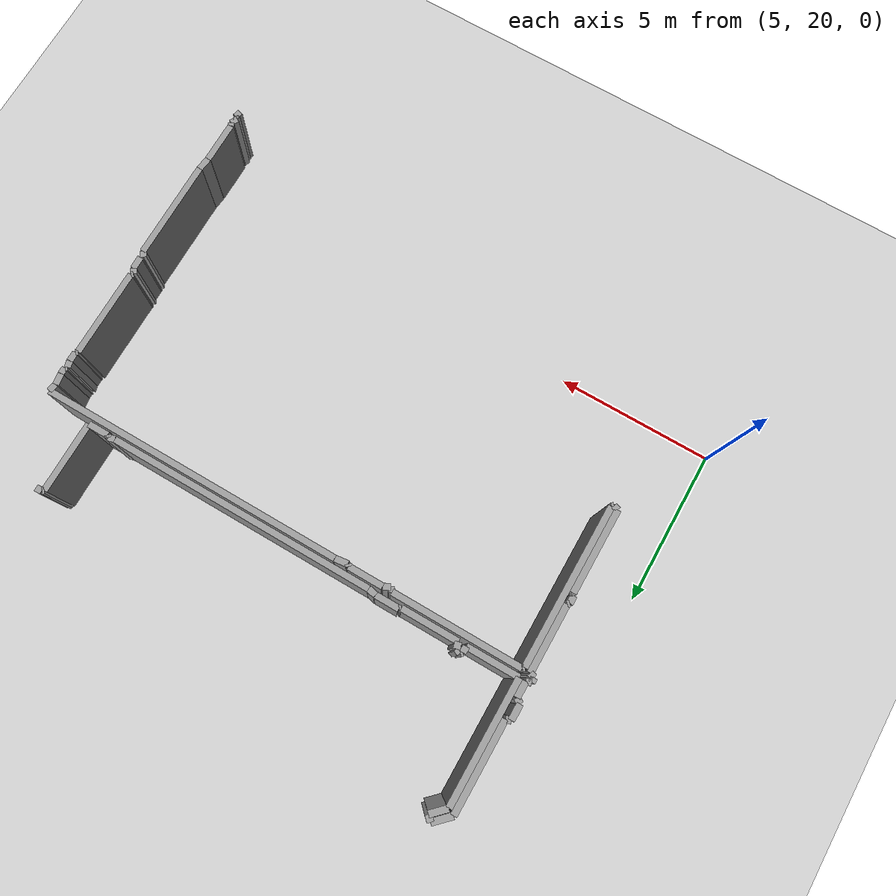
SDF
<sdf version="1.4">
 <world name="1_wall">
  <model name="ground_plane">
   <static>1</static>
   <link name="link">
    <collision name="collision">
     <geometry><plane><normal>0 0 1</normal><size>1000 1000</size></plane></geometry>
     <surface><friction><ode><mu>100</mu><mu2>50</mu2></ode></friction></surface>
    </collision>
    <visual name="visual">
     <cast_shadows>0</cast_shadows>
     <geometry><plane><normal>0 0 1</normal><size>10000 10000</size></plane></geometry>
     <material>
      <script><uri>file://media/materials/scripts/gazebo.material</uri><name>Gazebo/Grey</name></script>
     </material>
    </visual>
    <velocity_decay><linear>0</linear><angular>0</angular></velocity_decay>
   </link>
  </model>
  <model name="Wall_322">
   <static>1</static>
   <link name="Wall_322">
    <collision name="Wall_Collision_322">
     <geometry><box><size>0.2 0.2 2.5</size></box></geometry>
     <pose>0 0 1.25 0 -0 0</pose>
    </collision>
    <visual name="Wall_Visual_322">
     <pose>0 0 1.25 0 -0 0</pose>
     <geometry><box><size>0.2 0.2 2.5</size></box></geometry>
     <material>
      <script><uri>file://media/materials/scripts/gazebo.material</uri><name>Gazebo/Grey</name></script>
     </material>
    </visual>
    <velocity_decay><linear>0</linear><angular>0</angular></velocity_decay>
    <pose>21.4 31.2 0 0 0 3.14159265359</pose>
   </link>
  </model>
  <model name="Wall_323">
   <static>1</static>
   <link name="Wall_323">
    <collision name="Wall_Collision_323">
     <geometry><box><size>0.0707106781187 0.2 2.5</size></box></geometry>
     <pose>0 0 1.25 0 -0 0</pose>
    </collision>
    <visual name="Wall_Visual_323">
     <pose>0 0 1.25 0 -0 0</pose>
     <geometry><box><size>0.0707106781187 0.2 2.5</size></box></geometry>
     <material>
      <script><uri>file://media/materials/scripts/gazebo.material</uri><name>Gazebo/Grey</name></script>
     </material>
    </visual>
    <velocity_decay><linear>0</linear><angular>0</angular></velocity_decay>
    <pose>21.275 31.175 0 0 0 -2.35619449019</pose>
   </link>
  </model>
  <model name="Wall_324">
   <static>1</static>
   <link name="Wall_324">
    <collision name="Wall_Collision_324">
     <geometry><box><size>2.25 0.2 2.5</size></box></geometry>
     <pose>0 0 1.25 0 -0 0</pose>
    </collision>
    <visual name="Wall_Visual_324">
     <pose>0 0 1.25 0 -0 0</pose>
     <geometry><box><size>2.25 0.2 2.5</size></box></geometry>
     <material>
      <script><uri>file://media/materials/scripts/gazebo.material</uri><name>Gazebo/Grey</name></script>
     </material>
    </visual>
    <velocity_decay><linear>0</linear><angular>0</angular></velocity_decay>
    <pose>21.25 30.025 0 0 0 -1.57079632679</pose>
   </link>
  </model>
  <model name="Wall_325">
   <static>1</static>
   <link name="Wall_325">
    <collision name="Wall_Collision_325">
     <geometry><box><size>0.65 0.2 2.5</size></box></geometry>
     <pose>0 0 1.25 0 -0 0</pose>
    </collision>
    <visual name="Wall_Visual_325">
     <pose>0 0 1.25 0 -0 0</pose>
     <geometry><box><size>0.65 0.2 2.5</size></box></geometry>
     <material>
      <script><uri>file://media/materials/scripts/gazebo.material</uri><name>Gazebo/Grey</name></script>
     </material>
    </visual>
    <velocity_decay><linear>0</linear><angular>0</angular></velocity_decay>
    <pose>20.925 28.9 0 0 0 3.14159265359</pose>
   </link>
  </model>
  <model name="Wall_326">
   <static>1</static>
   <link name="Wall_326">
    <collision name="Wall_Collision_326">
     <geometry><box><size>0.0707106781187 0.2 2.5</size></box></geometry>
     <pose>0 0 1.25 0 -0 0</pose>
    </collision>
    <visual name="Wall_Visual_326">
     <pose>0 0 1.25 0 -0 0</pose>
     <geometry><box><size>0.0707106781187 0.2 2.5</size></box></geometry>
     <material>
      <script><uri>file://media/materials/scripts/gazebo.material</uri><name>Gazebo/Grey</name></script>
     </material>
    </visual>
    <velocity_decay><linear>0</linear><angular>0</angular></velocity_decay>
    <pose>20.575 28.925 0 0 0 2.35619449019</pose>
   </link>
  </model>
  <model name="Wall_327">
   <static>1</static>
   <link name="Wall_327">
    <collision name="Wall_Collision_327">
     <geometry><box><size>0.206155281281 0.2 2.5</size></box></geometry>
     <pose>0 0 1.25 0 -0 0</pose>
    </collision>
    <visual name="Wall_Visual_327">
     <pose>0 0 1.25 0 -0 0</pose>
     <geometry><box><size>0.206155281281 0.2 2.5</size></box></geometry>
     <material>
      <script><uri>file://media/materials/scripts/gazebo.material</uri><name>Gazebo/Grey</name></script>
     </material>
    </visual>
    <velocity_decay><linear>0</linear><angular>0</angular></velocity_decay>
    <pose>20.45 28.925 0 0 0 -2.89661399046</pose>
   </link>
  </model>
  <model name="Wall_328">
   <static>1</static>
   <link name="Wall_328">
    <collision name="Wall_Collision_328">
     <geometry><box><size>8.45 0.2 2.5</size></box></geometry>
     <pose>0 0 1.25 0 -0 0</pose>
    </collision>
    <visual name="Wall_Visual_328">
     <pose>0 0 1.25 0 -0 0</pose>
     <geometry><box><size>8.45 0.2 2.5</size></box></geometry>
     <material>
      <script><uri>file://media/materials/scripts/gazebo.material</uri><name>Gazebo/Grey</name></script>
     </material>
    </visual>
    <velocity_decay><linear>0</linear><angular>0</angular></velocity_decay>
    <pose>16.125 28.9 0 0 0 3.14159265359</pose>
   </link>
  </model>
  <model name="Wall_329">
   <static>1</static>
   <link name="Wall_329">
    <collision name="Wall_Collision_329">
     <geometry><box><size>0.25495097568 0.2 2.5</size></box></geometry>
     <pose>0 0 1.25 0 -0 0</pose>
    </collision>
    <visual name="Wall_Visual_329">
     <pose>0 0 1.25 0 -0 0</pose>
     <geometry><box><size>0.25495097568 0.2 2.5</size></box></geometry>
     <material>
      <script><uri>file://media/materials/scripts/gazebo.material</uri><name>Gazebo/Grey</name></script>
     </material>
    </visual>
    <velocity_decay><linear>0</linear><angular>0</angular></velocity_decay>
    <pose>11.775 28.925 0 0 0 2.94419709374</pose>
   </link>
  </model>
  <model name="Wall_330">
   <static>1</static>
   <link name="Wall_330">
    <collision name="Wall_Collision_330">
     <geometry><box><size>0.75 0.2 2.5</size></box></geometry>
     <pose>0 0 1.25 0 -0 0</pose>
    </collision>
    <visual name="Wall_Visual_330">
     <pose>0 0 1.25 0 -0 0</pose>
     <geometry><box><size>0.75 0.2 2.5</size></box></geometry>
     <material>
      <script><uri>file://media/materials/scripts/gazebo.material</uri><name>Gazebo/Grey</name></script>
     </material>
    </visual>
    <velocity_decay><linear>0</linear><angular>0</angular></velocity_decay>
    <pose>11.275 28.95 0 0 0 3.14159265359</pose>
   </link>
  </model>
  <model name="Wall_331">
   <static>1</static>
   <link name="Wall_331">
    <collision name="Wall_Collision_331">
     <geometry><box><size>0.0707106781187 0.2 2.5</size></box></geometry>
     <pose>0 0 1.25 0 -0 0</pose>
    </collision>
    <visual name="Wall_Visual_331">
     <pose>0 0 1.25 0 -0 0</pose>
     <geometry><box><size>0.0707106781187 0.2 2.5</size></box></geometry>
     <material>
      <script><uri>file://media/materials/scripts/gazebo.material</uri><name>Gazebo/Grey</name></script>
     </material>
    </visual>
    <velocity_decay><linear>0</linear><angular>0</angular></velocity_decay>
    <pose>10.875 28.925 0 0 0 -2.35619449019</pose>
   </link>
  </model>
  <model name="Wall_332">
   <static>1</static>
   <link name="Wall_332">
    <collision name="Wall_Collision_332">
     <geometry><box><size>1.8 0.2 2.5</size></box></geometry>
     <pose>0 0 1.25 0 -0 0</pose>
    </collision>
    <visual name="Wall_Visual_332">
     <pose>0 0 1.25 0 -0 0</pose>
     <geometry><box><size>1.8 0.2 2.5</size></box></geometry>
     <material>
      <script><uri>file://media/materials/scripts/gazebo.material</uri><name>Gazebo/Grey</name></script>
     </material>
    </visual>
    <velocity_decay><linear>0</linear><angular>0</angular></velocity_decay>
    <pose>9.95 28.9 0 0 0 3.14159265359</pose>
   </link>
  </model>
  <model name="Wall_333">
   <static>1</static>
   <link name="Wall_333">
    <collision name="Wall_Collision_333">
     <geometry><box><size>0.206155281281 0.2 2.5</size></box></geometry>
     <pose>0 0 1.25 0 -0 0</pose>
    </collision>
    <visual name="Wall_Visual_333">
     <pose>0 0 1.25 0 -0 0</pose>
     <geometry><box><size>0.206155281281 0.2 2.5</size></box></geometry>
     <material>
      <script><uri>file://media/materials/scripts/gazebo.material</uri><name>Gazebo/Grey</name></script>
     </material>
    </visual>
    <velocity_decay><linear>0</linear><angular>0</angular></velocity_decay>
    <pose>9.025 29.0 0 0 0 1.81577498992</pose>
   </link>
  </model>
  <model name="Wall_334">
   <static>1</static>
   <link name="Wall_334">
    <collision name="Wall_Collision_334">
     <geometry><box><size>0.158113883008 0.2 2.5</size></box></geometry>
     <pose>0 0 1.25 0 -0 0</pose>
    </collision>
    <visual name="Wall_Visual_334">
     <pose>0 0 1.25 0 -0 0</pose>
     <geometry><box><size>0.158113883008 0.2 2.5</size></box></geometry>
     <material>
      <script><uri>file://media/materials/scripts/gazebo.material</uri><name>Gazebo/Grey</name></script>
     </material>
    </visual>
    <velocity_decay><linear>0</linear><angular>0</angular></velocity_decay>
    <pose>8.925 29.125 0 0 0 2.81984209919</pose>
   </link>
  </model>
  <model name="Wall_335">
   <static>1</static>
   <link name="Wall_335">
    <collision name="Wall_Collision_335">
     <geometry><box><size>0.0707106781187 0.2 2.5</size></box></geometry>
     <pose>0 0 1.25 0 -0 0</pose>
    </collision>
    <visual name="Wall_Visual_335">
     <pose>0 0 1.25 0 -0 0</pose>
     <geometry><box><size>0.0707106781187 0.2 2.5</size></box></geometry>
     <material>
      <script><uri>file://media/materials/scripts/gazebo.material</uri><name>Gazebo/Grey</name></script>
     </material>
    </visual>
    <velocity_decay><linear>0</linear><angular>0</angular></velocity_decay>
    <pose>8.825 29.125 0 0 0 -2.35619449019</pose>
   </link>
  </model>
  <model name="Wall_336">
   <static>1</static>
   <link name="Wall_336">
    <collision name="Wall_Collision_336">
     <geometry><box><size>0.2 0.2 2.5</size></box></geometry>
     <pose>0 0 1.25 0 -0 0</pose>
    </collision>
    <visual name="Wall_Visual_336">
     <pose>0 0 1.25 0 -0 0</pose>
     <geometry><box><size>0.2 0.2 2.5</size></box></geometry>
     <material>
      <script><uri>file://media/materials/scripts/gazebo.material</uri><name>Gazebo/Grey</name></script>
     </material>
    </visual>
    <velocity_decay><linear>0</linear><angular>0</angular></velocity_decay>
    <pose>8.8 29.0 0 0 0 -1.57079632679</pose>
   </link>
  </model>
  <model name="Wall_337">
   <static>1</static>
   <link name="Wall_337">
    <collision name="Wall_Collision_337">
     <geometry><box><size>1.65 0.2 2.5</size></box></geometry>
     <pose>0 0 1.25 0 -0 0</pose>
    </collision>
    <visual name="Wall_Visual_337">
     <pose>0 0 1.25 0 -0 0</pose>
     <geometry><box><size>1.65 0.2 2.5</size></box></geometry>
     <material>
      <script><uri>file://media/materials/scripts/gazebo.material</uri><name>Gazebo/Grey</name></script>
     </material>
    </visual>
    <velocity_decay><linear>0</linear><angular>0</angular></velocity_decay>
    <pose>7.975 28.9 0 0 0 3.14159265359</pose>
   </link>
  </model>
  <model name="Wall_338">
   <static>1</static>
   <link name="Wall_338">
    <collision name="Wall_Collision_338">
     <geometry><box><size>3.9 0.2 2.5</size></box></geometry>
     <pose>0 0 1.25 0 -0 0</pose>
    </collision>
    <visual name="Wall_Visual_338">
     <pose>0 0 1.25 0 -0 0</pose>
     <geometry><box><size>3.9 0.2 2.5</size></box></geometry>
     <material>
      <script><uri>file://media/materials/scripts/gazebo.material</uri><name>Gazebo/Grey</name></script>
     </material>
    </visual>
    <velocity_decay><linear>0</linear><angular>0</angular></velocity_decay>
    <pose>7.15 30.85 0 0 0 1.57079632679</pose>
   </link>
  </model>
  <model name="Wall_339">
   <static>1</static>
   <link name="Wall_339">
    <collision name="Wall_Collision_339">
     <geometry><box><size>0.565685424949 0.2 2.5</size></box></geometry>
     <pose>0 0 1.25 0 -0 0</pose>
    </collision>
    <visual name="Wall_Visual_339">
     <pose>0 0 1.25 0 -0 0</pose>
     <geometry><box><size>0.565685424949 0.2 2.5</size></box></geometry>
     <material>
      <script><uri>file://media/materials/scripts/gazebo.material</uri><name>Gazebo/Grey</name></script>
     </material>
    </visual>
    <velocity_decay><linear>0</linear><angular>0</angular></velocity_decay>
    <pose>7.35 33.0 0 0 0 0.785398163397</pose>
   </link>
  </model>
  <model name="Wall_340">
   <static>1</static>
   <link name="Wall_340">
    <collision name="Wall_Collision_340">
     <geometry><box><size>0.212132034356 0.2 2.5</size></box></geometry>
     <pose>0 0 1.25 0 -0 0</pose>
    </collision>
    <visual name="Wall_Visual_340">
     <pose>0 0 1.25 0 -0 0</pose>
     <geometry><box><size>0.212132034356 0.2 2.5</size></box></geometry>
     <material>
      <script><uri>file://media/materials/scripts/gazebo.material</uri><name>Gazebo/Grey</name></script>
     </material>
    </visual>
    <velocity_decay><linear>0</linear><angular>0</angular></velocity_decay>
    <pose>7.475 33.275 0 0 0 2.35619449019</pose>
   </link>
  </model>
  <model name="Wall_341">
   <static>1</static>
   <link name="Wall_341">
    <collision name="Wall_Collision_341">
     <geometry><box><size>0.636396103068 0.2 2.5</size></box></geometry>
     <pose>0 0 1.25 0 -0 0</pose>
    </collision>
    <visual name="Wall_Visual_341">
     <pose>0 0 1.25 0 -0 0</pose>
     <geometry><box><size>0.636396103068 0.2 2.5</size></box></geometry>
     <material>
      <script><uri>file://media/materials/scripts/gazebo.material</uri><name>Gazebo/Grey</name></script>
     </material>
    </visual>
    <velocity_decay><linear>0</linear><angular>0</angular></velocity_decay>
    <pose>7.175 33.125 0 0 0 -2.35619449019</pose>
   </link>
  </model>
  <model name="Wall_342">
   <static>1</static>
   <link name="Wall_342">
    <collision name="Wall_Collision_342">
     <geometry><box><size>2.85 0.2 2.5</size></box></geometry>
     <pose>0 0 1.25 0 -0 0</pose>
    </collision>
    <visual name="Wall_Visual_342">
     <pose>0 0 1.25 0 -0 0</pose>
     <geometry><box><size>2.85 0.2 2.5</size></box></geometry>
     <material>
      <script><uri>file://media/materials/scripts/gazebo.material</uri><name>Gazebo/Grey</name></script>
     </material>
    </visual>
    <velocity_decay><linear>0</linear><angular>0</angular></velocity_decay>
    <pose>6.95 31.475 0 0 0 -1.57079632679</pose>
   </link>
  </model>
  <model name="Wall_343">
   <static>1</static>
   <link name="Wall_343">
    <collision name="Wall_Collision_343">
     <geometry><box><size>0.158113883008 0.2 2.5</size></box></geometry>
     <pose>0 0 1.25 0 -0 0</pose>
    </collision>
    <visual name="Wall_Visual_343">
     <pose>0 0 1.25 0 -0 0</pose>
     <geometry><box><size>0.158113883008 0.2 2.5</size></box></geometry>
     <material>
      <script><uri>file://media/materials/scripts/gazebo.material</uri><name>Gazebo/Grey</name></script>
     </material>
    </visual>
    <velocity_decay><linear>0</linear><angular>0</angular></velocity_decay>
    <pose>6.875 30.025 0 0 0 -2.81984209919</pose>
   </link>
  </model>
  <model name="Wall_344">
   <static>1</static>
   <link name="Wall_344">
    <collision name="Wall_Collision_344">
     <geometry><box><size>0.5 0.2 2.5</size></box></geometry>
     <pose>0 0 1.25 0 -0 0</pose>
    </collision>
    <visual name="Wall_Visual_344">
     <pose>0 0 1.25 0 -0 0</pose>
     <geometry><box><size>0.5 0.2 2.5</size></box></geometry>
     <material>
      <script><uri>file://media/materials/scripts/gazebo.material</uri><name>Gazebo/Grey</name></script>
     </material>
    </visual>
    <velocity_decay><linear>0</linear><angular>0</angular></velocity_decay>
    <pose>6.8 29.75 0 0 0 -1.57079632679</pose>
   </link>
  </model>
  <model name="Wall_345">
   <static>1</static>
   <link name="Wall_345">
    <collision name="Wall_Collision_345">
     <geometry><box><size>0.180277563773 0.2 2.5</size></box></geometry>
     <pose>0 0 1.25 0 -0 0</pose>
    </collision>
    <visual name="Wall_Visual_345">
     <pose>0 0 1.25 0 -0 0</pose>
     <geometry><box><size>0.180277563773 0.2 2.5</size></box></geometry>
     <material>
      <script><uri>file://media/materials/scripts/gazebo.material</uri><name>Gazebo/Grey</name></script>
     </material>
    </visual>
    <velocity_decay><linear>0</linear><angular>0</angular></velocity_decay>
    <pose>6.875 29.45 0 0 0 -0.588002603548</pose>
   </link>
  </model>
  <model name="Wall_346">
   <static>1</static>
   <link name="Wall_346">
    <collision name="Wall_Collision_346">
     <geometry><box><size>0.5 0.2 2.5</size></box></geometry>
     <pose>0 0 1.25 0 -0 0</pose>
    </collision>
    <visual name="Wall_Visual_346">
     <pose>0 0 1.25 0 -0 0</pose>
     <geometry><box><size>0.5 0.2 2.5</size></box></geometry>
     <material>
      <script><uri>file://media/materials/scripts/gazebo.material</uri><name>Gazebo/Grey</name></script>
     </material>
    </visual>
    <velocity_decay><linear>0</linear><angular>0</angular></velocity_decay>
    <pose>6.95 29.15 0 0 0 -1.57079632679</pose>
   </link>
  </model>
  <model name="Wall_347">
   <static>1</static>
   <link name="Wall_347">
    <collision name="Wall_Collision_347">
     <geometry><box><size>0.158113883008 0.2 2.5</size></box></geometry>
     <pose>0 0 1.25 0 -0 0</pose>
    </collision>
    <visual name="Wall_Visual_347">
     <pose>0 0 1.25 0 -0 0</pose>
     <geometry><box><size>0.158113883008 0.2 2.5</size></box></geometry>
     <material>
      <script><uri>file://media/materials/scripts/gazebo.material</uri><name>Gazebo/Grey</name></script>
     </material>
    </visual>
    <velocity_decay><linear>0</linear><angular>0</angular></velocity_decay>
    <pose>6.875 28.875 0 0 0 -2.81984209919</pose>
   </link>
  </model>
  <model name="Wall_348">
   <static>1</static>
   <link name="Wall_348">
    <collision name="Wall_Collision_348">
     <geometry><box><size>0.15 0.2 2.5</size></box></geometry>
     <pose>0 0 1.25 0 -0 0</pose>
    </collision>
    <visual name="Wall_Visual_348">
     <pose>0 0 1.25 0 -0 0</pose>
     <geometry><box><size>0.15 0.2 2.5</size></box></geometry>
     <material>
      <script><uri>file://media/materials/scripts/gazebo.material</uri><name>Gazebo/Grey</name></script>
     </material>
    </visual>
    <velocity_decay><linear>0</linear><angular>0</angular></velocity_decay>
    <pose>6.8 28.775 0 0 0 -1.57079632679</pose>
   </link>
  </model>
  <model name="Wall_349">
   <static>1</static>
   <link name="Wall_349">
    <collision name="Wall_Collision_349">
     <geometry><box><size>0.158113883008 0.2 2.5</size></box></geometry>
     <pose>0 0 1.25 0 -0 0</pose>
    </collision>
    <visual name="Wall_Visual_349">
     <pose>0 0 1.25 0 -0 0</pose>
     <geometry><box><size>0.158113883008 0.2 2.5</size></box></geometry>
     <material>
      <script><uri>file://media/materials/scripts/gazebo.material</uri><name>Gazebo/Grey</name></script>
     </material>
    </visual>
    <velocity_decay><linear>0</linear><angular>0</angular></velocity_decay>
    <pose>6.875 28.675 0 0 0 -0.321750554397</pose>
   </link>
  </model>
  <model name="Wall_350">
   <static>1</static>
   <link name="Wall_350">
    <collision name="Wall_Collision_350">
     <geometry><box><size>2.15 0.2 2.5</size></box></geometry>
     <pose>0 0 1.25 0 -0 0</pose>
    </collision>
    <visual name="Wall_Visual_350">
     <pose>0 0 1.25 0 -0 0</pose>
     <geometry><box><size>2.15 0.2 2.5</size></box></geometry>
     <material>
      <script><uri>file://media/materials/scripts/gazebo.material</uri><name>Gazebo/Grey</name></script>
     </material>
    </visual>
    <velocity_decay><linear>0</linear><angular>0</angular></velocity_decay>
    <pose>6.95 27.575 0 0 0 -1.57079632679</pose>
   </link>
  </model>
  <model name="Wall_351">
   <static>1</static>
   <link name="Wall_351">
    <collision name="Wall_Collision_351">
     <geometry><box><size>0.0707106781187 0.2 2.5</size></box></geometry>
     <pose>0 0 1.25 0 -0 0</pose>
    </collision>
    <visual name="Wall_Visual_351">
     <pose>0 0 1.25 0 -0 0</pose>
     <geometry><box><size>0.0707106781187 0.2 2.5</size></box></geometry>
     <material>
      <script><uri>file://media/materials/scripts/gazebo.material</uri><name>Gazebo/Grey</name></script>
     </material>
    </visual>
    <velocity_decay><linear>0</linear><angular>0</angular></velocity_decay>
    <pose>6.925 26.475 0 0 0 -2.35619449019</pose>
   </link>
  </model>
  <model name="Wall_352">
   <static>1</static>
   <link name="Wall_352">
    <collision name="Wall_Collision_352">
     <geometry><box><size>0.25 0.2 2.5</size></box></geometry>
     <pose>0 0 1.25 0 -0 0</pose>
    </collision>
    <visual name="Wall_Visual_352">
     <pose>0 0 1.25 0 -0 0</pose>
     <geometry><box><size>0.25 0.2 2.5</size></box></geometry>
     <material>
      <script><uri>file://media/materials/scripts/gazebo.material</uri><name>Gazebo/Grey</name></script>
     </material>
    </visual>
    <velocity_decay><linear>0</linear><angular>0</angular></velocity_decay>
    <pose>6.9 26.325 0 0 0 -1.57079632679</pose>
   </link>
  </model>
  <model name="Wall_353">
   <static>1</static>
   <link name="Wall_353">
    <collision name="Wall_Collision_353">
     <geometry><box><size>0.0707106781187 0.2 2.5</size></box></geometry>
     <pose>0 0 1.25 0 -0 0</pose>
    </collision>
    <visual name="Wall_Visual_353">
     <pose>0 0 1.25 0 -0 0</pose>
     <geometry><box><size>0.0707106781187 0.2 2.5</size></box></geometry>
     <material>
      <script><uri>file://media/materials/scripts/gazebo.material</uri><name>Gazebo/Grey</name></script>
     </material>
    </visual>
    <velocity_decay><linear>0</linear><angular>0</angular></velocity_decay>
    <pose>6.925 26.175 0 0 0 -0.785398163397</pose>
   </link>
  </model>
  <model name="Wall_354">
   <static>1</static>
   <link name="Wall_354">
    <collision name="Wall_Collision_354">
     <geometry><box><size>2.7 0.2 2.5</size></box></geometry>
     <pose>0 0 1.25 0 -0 0</pose>
    </collision>
    <visual name="Wall_Visual_354">
     <pose>0 0 1.25 0 -0 0</pose>
     <geometry><box><size>2.7 0.2 2.5</size></box></geometry>
     <material>
      <script><uri>file://media/materials/scripts/gazebo.material</uri><name>Gazebo/Grey</name></script>
     </material>
    </visual>
    <velocity_decay><linear>0</linear><angular>0</angular></velocity_decay>
    <pose>6.95 24.8 0 0 0 -1.57079632679</pose>
   </link>
  </model>
  <model name="Wall_355">
   <static>1</static>
   <link name="Wall_355">
    <collision name="Wall_Collision_355">
     <geometry><box><size>0.158113883008 0.2 2.5</size></box></geometry>
     <pose>0 0 1.25 0 -0 0</pose>
    </collision>
    <visual name="Wall_Visual_355">
     <pose>0 0 1.25 0 -0 0</pose>
     <geometry><box><size>0.158113883008 0.2 2.5</size></box></geometry>
     <material>
      <script><uri>file://media/materials/scripts/gazebo.material</uri><name>Gazebo/Grey</name></script>
     </material>
    </visual>
    <velocity_decay><linear>0</linear><angular>0</angular></velocity_decay>
    <pose>7.025 23.425 0 0 0 -0.321750554397</pose>
   </link>
  </model>
  <model name="Wall_356">
   <static>1</static>
   <link name="Wall_356">
    <collision name="Wall_Collision_356">
     <geometry><box><size>0.0707106781187 0.2 2.5</size></box></geometry>
     <pose>0 0 1.25 0 -0 0</pose>
    </collision>
    <visual name="Wall_Visual_356">
     <pose>0 0 1.25 0 -0 0</pose>
     <geometry><box><size>0.0707106781187 0.2 2.5</size></box></geometry>
     <material>
      <script><uri>file://media/materials/scripts/gazebo.material</uri><name>Gazebo/Grey</name></script>
     </material>
    </visual>
    <velocity_decay><linear>0</linear><angular>0</angular></velocity_decay>
    <pose>7.125 23.425 0 0 0 0.785398163397</pose>
   </link>
  </model>
  <model name="Wall_357">
   <static>1</static>
   <link name="Wall_357">
    <collision name="Wall_Collision_357">
     <geometry><box><size>5.15 0.2 2.5</size></box></geometry>
     <pose>0 0 1.25 0 -0 0</pose>
    </collision>
    <visual name="Wall_Visual_357">
     <pose>0 0 1.25 0 -0 0</pose>
     <geometry><box><size>5.15 0.2 2.5</size></box></geometry>
     <material>
      <script><uri>file://media/materials/scripts/gazebo.material</uri><name>Gazebo/Grey</name></script>
     </material>
    </visual>
    <velocity_decay><linear>0</linear><angular>0</angular></velocity_decay>
    <pose>7.15 26.025 0 0 0 1.57079632679</pose>
   </link>
  </model>
  <model name="Wall_358">
   <static>1</static>
   <link name="Wall_358">
    <collision name="Wall_Collision_358">
     <geometry><box><size>0.0707106781187 0.2 2.5</size></box></geometry>
     <pose>0 0 1.25 0 -0 0</pose>
    </collision>
    <visual name="Wall_Visual_358">
     <pose>0 0 1.25 0 -0 0</pose>
     <geometry><box><size>0.0707106781187 0.2 2.5</size></box></geometry>
     <material>
      <script><uri>file://media/materials/scripts/gazebo.material</uri><name>Gazebo/Grey</name></script>
     </material>
    </visual>
    <velocity_decay><linear>0</linear><angular>0</angular></velocity_decay>
    <pose>7.175 28.625 0 0 0 0.785398163397</pose>
   </link>
  </model>
  <model name="Wall_359">
   <static>1</static>
   <link name="Wall_359">
    <collision name="Wall_Collision_359">
     <geometry><box><size>4.1 0.2 2.5</size></box></geometry>
     <pose>0 0 1.25 0 -0 0</pose>
    </collision>
    <visual name="Wall_Visual_359">
     <pose>0 0 1.25 0 -0 0</pose>
     <geometry><box><size>4.1 0.2 2.5</size></box></geometry>
     <material>
      <script><uri>file://media/materials/scripts/gazebo.material</uri><name>Gazebo/Grey</name></script>
     </material>
    </visual>
    <velocity_decay><linear>0</linear><angular>0</angular></velocity_decay>
    <pose>9.25 28.65 0 0 0 0.0</pose>
   </link>
  </model>
  <model name="Wall_360">
   <static>1</static>
   <link name="Wall_360">
    <collision name="Wall_Collision_360">
     <geometry><box><size>0.141421356237 0.2 2.5</size></box></geometry>
     <pose>0 0 1.25 0 -0 0</pose>
    </collision>
    <visual name="Wall_Visual_360">
     <pose>0 0 1.25 0 -0 0</pose>
     <geometry><box><size>0.141421356237 0.2 2.5</size></box></geometry>
     <material>
      <script><uri>file://media/materials/scripts/gazebo.material</uri><name>Gazebo/Grey</name></script>
     </material>
    </visual>
    <velocity_decay><linear>0</linear><angular>0</angular></velocity_decay>
    <pose>11.35 28.6 0 0 0 -0.785398163397</pose>
   </link>
  </model>
  <model name="Wall_361">
   <static>1</static>
   <link name="Wall_361">
    <collision name="Wall_Collision_361">
     <geometry><box><size>0.22360679775 0.2 2.5</size></box></geometry>
     <pose>0 0 1.25 0 -0 0</pose>
    </collision>
    <visual name="Wall_Visual_361">
     <pose>0 0 1.25 0 -0 0</pose>
     <geometry><box><size>0.22360679775 0.2 2.5</size></box></geometry>
     <material>
      <script><uri>file://media/materials/scripts/gazebo.material</uri><name>Gazebo/Grey</name></script>
     </material>
    </visual>
    <velocity_decay><linear>0</linear><angular>0</angular></velocity_decay>
    <pose>11.5 28.6 0 0 0 0.463647609001</pose>
   </link>
  </model>
  <model name="Wall_362">
   <static>1</static>
   <link name="Wall_362">
    <collision name="Wall_Collision_362">
     <geometry><box><size>1.1 0.2 2.5</size></box></geometry>
     <pose>0 0 1.25 0 -0 0</pose>
    </collision>
    <visual name="Wall_Visual_362">
     <pose>0 0 1.25 0 -0 0</pose>
     <geometry><box><size>1.1 0.2 2.5</size></box></geometry>
     <material>
      <script><uri>file://media/materials/scripts/gazebo.material</uri><name>Gazebo/Grey</name></script>
     </material>
    </visual>
    <velocity_decay><linear>0</linear><angular>0</angular></velocity_decay>
    <pose>12.15 28.65 0 0 0 0.0</pose>
   </link>
  </model>
  <model name="Wall_363">
   <static>1</static>
   <link name="Wall_363">
    <collision name="Wall_Collision_363">
     <geometry><box><size>0.0707106781187 0.2 2.5</size></box></geometry>
     <pose>0 0 1.25 0 -0 0</pose>
    </collision>
    <visual name="Wall_Visual_363">
     <pose>0 0 1.25 0 -0 0</pose>
     <geometry><box><size>0.0707106781187 0.2 2.5</size></box></geometry>
     <material>
      <script><uri>file://media/materials/scripts/gazebo.material</uri><name>Gazebo/Grey</name></script>
     </material>
    </visual>
    <velocity_decay><linear>0</linear><angular>0</angular></velocity_decay>
    <pose>12.725 28.625 0 0 0 -0.785398163397</pose>
   </link>
  </model>
  <model name="Wall_364">
   <static>1</static>
   <link name="Wall_364">
    <collision name="Wall_Collision_364">
     <geometry><box><size>0.403112887415 0.2 2.5</size></box></geometry>
     <pose>0 0 1.25 0 -0 0</pose>
    </collision>
    <visual name="Wall_Visual_364">
     <pose>0 0 1.25 0 -0 0</pose>
     <geometry><box><size>0.403112887415 0.2 2.5</size></box></geometry>
     <material>
      <script><uri>file://media/materials/scripts/gazebo.material</uri><name>Gazebo/Grey</name></script>
     </material>
    </visual>
    <velocity_decay><linear>0</linear><angular>0</angular></velocity_decay>
    <pose>12.95 28.625 0 0 0 0.124354994547</pose>
   </link>
  </model>
  <model name="Wall_365">
   <static>1</static>
   <link name="Wall_365">
    <collision name="Wall_Collision_365">
     <geometry><box><size>9.65 0.2 2.5</size></box></geometry>
     <pose>0 0 1.25 0 -0 0</pose>
    </collision>
    <visual name="Wall_Visual_365">
     <pose>0 0 1.25 0 -0 0</pose>
     <geometry><box><size>9.65 0.2 2.5</size></box></geometry>
     <material>
      <script><uri>file://media/materials/scripts/gazebo.material</uri><name>Gazebo/Grey</name></script>
     </material>
    </visual>
    <velocity_decay><linear>0</linear><angular>0</angular></velocity_decay>
    <pose>17.975 28.65 0 0 0 0.0</pose>
   </link>
  </model>
  <model name="Wall_366">
   <static>1</static>
   <link name="Wall_366">
    <collision name="Wall_Collision_366">
     <geometry><box><size>0.25495097568 0.2 2.5</size></box></geometry>
     <pose>0 0 1.25 0 -0 0</pose>
    </collision>
    <visual name="Wall_Visual_366">
     <pose>0 0 1.25 0 -0 0</pose>
     <geometry><box><size>0.25495097568 0.2 2.5</size></box></geometry>
     <material>
      <script><uri>file://media/materials/scripts/gazebo.material</uri><name>Gazebo/Grey</name></script>
     </material>
    </visual>
    <velocity_decay><linear>0</linear><angular>0</angular></velocity_decay>
    <pose>22.775 28.525 0 0 0 -1.76819188664</pose>
   </link>
  </model>
  <model name="Wall_367">
   <static>1</static>
   <link name="Wall_367">
    <collision name="Wall_Collision_367">
     <geometry><box><size>0.353553390593 0.2 2.5</size></box></geometry>
     <pose>0 0 1.25 0 -0 0</pose>
    </collision>
    <visual name="Wall_Visual_367">
     <pose>0 0 1.25 0 -0 0</pose>
     <geometry><box><size>0.353553390593 0.2 2.5</size></box></geometry>
     <material>
      <script><uri>file://media/materials/scripts/gazebo.material</uri><name>Gazebo/Grey</name></script>
     </material>
    </visual>
    <velocity_decay><linear>0</linear><angular>0</angular></velocity_decay>
    <pose>22.775 28.225 0 0 0 -1.42889927219</pose>
   </link>
  </model>
  <model name="Wall_368">
   <static>1</static>
   <link name="Wall_368">
    <collision name="Wall_Collision_368">
     <geometry><box><size>0.2 0.2 2.5</size></box></geometry>
     <pose>0 0 1.25 0 -0 0</pose>
    </collision>
    <visual name="Wall_Visual_368">
     <pose>0 0 1.25 0 -0 0</pose>
     <geometry><box><size>0.2 0.2 2.5</size></box></geometry>
     <material>
      <script><uri>file://media/materials/scripts/gazebo.material</uri><name>Gazebo/Grey</name></script>
     </material>
    </visual>
    <velocity_decay><linear>0</linear><angular>0</angular></velocity_decay>
    <pose>22.8 27.95 0 0 0 -1.57079632679</pose>
   </link>
  </model>
  <model name="Wall_369">
   <static>1</static>
   <link name="Wall_369">
    <collision name="Wall_Collision_369">
     <geometry><box><size>0.0707106781187 0.2 2.5</size></box></geometry>
     <pose>0 0 1.25 0 -0 0</pose>
    </collision>
    <visual name="Wall_Visual_369">
     <pose>0 0 1.25 0 -0 0</pose>
     <geometry><box><size>0.0707106781187 0.2 2.5</size></box></geometry>
     <material>
      <script><uri>file://media/materials/scripts/gazebo.material</uri><name>Gazebo/Grey</name></script>
     </material>
    </visual>
    <velocity_decay><linear>0</linear><angular>0</angular></velocity_decay>
    <pose>22.775 27.825 0 0 0 -2.35619449019</pose>
   </link>
  </model>
  <model name="Wall_370">
   <static>1</static>
   <link name="Wall_370">
    <collision name="Wall_Collision_370">
     <geometry><box><size>0.206155281281 0.2 2.5</size></box></geometry>
     <pose>0 0 1.25 0 -0 0</pose>
    </collision>
    <visual name="Wall_Visual_370">
     <pose>0 0 1.25 0 -0 0</pose>
     <geometry><box><size>0.206155281281 0.2 2.5</size></box></geometry>
     <material>
      <script><uri>file://media/materials/scripts/gazebo.material</uri><name>Gazebo/Grey</name></script>
     </material>
    </visual>
    <velocity_decay><linear>0</linear><angular>0</angular></velocity_decay>
    <pose>22.775 27.7 0 0 0 -1.32581766367</pose>
   </link>
  </model>
  <model name="Wall_371">
   <static>1</static>
   <link name="Wall_371">
    <collision name="Wall_Collision_371">
     <geometry><box><size>0.3 0.2 2.5</size></box></geometry>
     <pose>0 0 1.25 0 -0 0</pose>
    </collision>
    <visual name="Wall_Visual_371">
     <pose>0 0 1.25 0 -0 0</pose>
     <geometry><box><size>0.3 0.2 2.5</size></box></geometry>
     <material>
      <script><uri>file://media/materials/scripts/gazebo.material</uri><name>Gazebo/Grey</name></script>
     </material>
    </visual>
    <velocity_decay><linear>0</linear><angular>0</angular></velocity_decay>
    <pose>22.8 27.45 0 0 0 -1.57079632679</pose>
   </link>
  </model>
  <model name="Wall_372">
   <static>1</static>
   <link name="Wall_372">
    <collision name="Wall_Collision_372">
     <geometry><box><size>0.0707106781187 0.2 2.5</size></box></geometry>
     <pose>0 0 1.25 0 -0 0</pose>
    </collision>
    <visual name="Wall_Visual_372">
     <pose>0 0 1.25 0 -0 0</pose>
     <geometry><box><size>0.0707106781187 0.2 2.5</size></box></geometry>
     <material>
      <script><uri>file://media/materials/scripts/gazebo.material</uri><name>Gazebo/Grey</name></script>
     </material>
    </visual>
    <velocity_decay><linear>0</linear><angular>0</angular></velocity_decay>
    <pose>22.775 27.275 0 0 0 -2.35619449019</pose>
   </link>
  </model>
  <model name="Wall_373">
   <static>1</static>
   <link name="Wall_373">
    <collision name="Wall_Collision_373">
     <geometry><box><size>2.8 0.2 2.5</size></box></geometry>
     <pose>0 0 1.25 0 -0 0</pose>
    </collision>
    <visual name="Wall_Visual_373">
     <pose>0 0 1.25 0 -0 0</pose>
     <geometry><box><size>2.8 0.2 2.5</size></box></geometry>
     <material>
      <script><uri>file://media/materials/scripts/gazebo.material</uri><name>Gazebo/Grey</name></script>
     </material>
    </visual>
    <velocity_decay><linear>0</linear><angular>0</angular></velocity_decay>
    <pose>22.75 25.85 0 0 0 -1.57079632679</pose>
   </link>
  </model>
  <model name="Wall_374">
   <static>1</static>
   <link name="Wall_374">
    <collision name="Wall_Collision_374">
     <geometry><box><size>0.0707106781187 0.2 2.5</size></box></geometry>
     <pose>0 0 1.25 0 -0 0</pose>
    </collision>
    <visual name="Wall_Visual_374">
     <pose>0 0 1.25 0 -0 0</pose>
     <geometry><box><size>0.0707106781187 0.2 2.5</size></box></geometry>
     <material>
      <script><uri>file://media/materials/scripts/gazebo.material</uri><name>Gazebo/Grey</name></script>
     </material>
    </visual>
    <velocity_decay><linear>0</linear><angular>0</angular></velocity_decay>
    <pose>22.725 24.425 0 0 0 -2.35619449019</pose>
   </link>
  </model>
  <model name="Wall_375">
   <static>1</static>
   <link name="Wall_375">
    <collision name="Wall_Collision_375">
     <geometry><box><size>0.180277563773 0.2 2.5</size></box></geometry>
     <pose>0 0 1.25 0 -0 0</pose>
    </collision>
    <visual name="Wall_Visual_375">
     <pose>0 0 1.25 0 -0 0</pose>
     <geometry><box><size>0.180277563773 0.2 2.5</size></box></geometry>
     <material>
      <script><uri>file://media/materials/scripts/gazebo.material</uri><name>Gazebo/Grey</name></script>
     </material>
    </visual>
    <velocity_decay><linear>0</linear><angular>0</angular></velocity_decay>
    <pose>22.75 24.325 0 0 0 -0.982793723247</pose>
   </link>
  </model>
  <model name="Wall_376">
   <static>1</static>
   <link name="Wall_376">
    <collision name="Wall_Collision_376">
     <geometry><box><size>0.4 0.2 2.5</size></box></geometry>
     <pose>0 0 1.25 0 -0 0</pose>
    </collision>
    <visual name="Wall_Visual_376">
     <pose>0 0 1.25 0 -0 0</pose>
     <geometry><box><size>0.4 0.2 2.5</size></box></geometry>
     <material>
      <script><uri>file://media/materials/scripts/gazebo.material</uri><name>Gazebo/Grey</name></script>
     </material>
    </visual>
    <velocity_decay><linear>0</linear><angular>0</angular></velocity_decay>
    <pose>22.8 24.05 0 0 0 -1.57079632679</pose>
   </link>
  </model>
  <model name="Wall_377">
   <static>1</static>
   <link name="Wall_377">
    <collision name="Wall_Collision_377">
     <geometry><box><size>0.0707106781187 0.2 2.5</size></box></geometry>
     <pose>0 0 1.25 0 -0 0</pose>
    </collision>
    <visual name="Wall_Visual_377">
     <pose>0 0 1.25 0 -0 0</pose>
     <geometry><box><size>0.0707106781187 0.2 2.5</size></box></geometry>
     <material>
      <script><uri>file://media/materials/scripts/gazebo.material</uri><name>Gazebo/Grey</name></script>
     </material>
    </visual>
    <velocity_decay><linear>0</linear><angular>0</angular></velocity_decay>
    <pose>22.775 23.825 0 0 0 -2.35619449019</pose>
   </link>
  </model>
  <model name="Wall_378">
   <static>1</static>
   <link name="Wall_378">
    <collision name="Wall_Collision_378">
     <geometry><box><size>0.180277563773 0.2 2.5</size></box></geometry>
     <pose>0 0 1.25 0 -0 0</pose>
    </collision>
    <visual name="Wall_Visual_378">
     <pose>0 0 1.25 0 -0 0</pose>
     <geometry><box><size>0.180277563773 0.2 2.5</size></box></geometry>
     <material>
      <script><uri>file://media/materials/scripts/gazebo.material</uri><name>Gazebo/Grey</name></script>
     </material>
    </visual>
    <velocity_decay><linear>0</linear><angular>0</angular></velocity_decay>
    <pose>22.8 23.725 0 0 0 -0.982793723247</pose>
   </link>
  </model>
  <model name="Wall_379">
   <static>1</static>
   <link name="Wall_379">
    <collision name="Wall_Collision_379">
     <geometry><box><size>3.15 0.2 2.5</size></box></geometry>
     <pose>0 0 1.25 0 -0 0</pose>
    </collision>
    <visual name="Wall_Visual_379">
     <pose>0 0 1.25 0 -0 0</pose>
     <geometry><box><size>3.15 0.2 2.5</size></box></geometry>
     <material>
      <script><uri>file://media/materials/scripts/gazebo.material</uri><name>Gazebo/Grey</name></script>
     </material>
    </visual>
    <velocity_decay><linear>0</linear><angular>0</angular></velocity_decay>
    <pose>22.85 22.075 0 0 0 -1.57079632679</pose>
   </link>
  </model>
  <model name="Wall_380">
   <static>1</static>
   <link name="Wall_380">
    <collision name="Wall_Collision_380">
     <geometry><box><size>0.403112887415 0.2 2.5</size></box></geometry>
     <pose>0 0 1.25 0 -0 0</pose>
    </collision>
    <visual name="Wall_Visual_380">
     <pose>0 0 1.25 0 -0 0</pose>
     <geometry><box><size>0.403112887415 0.2 2.5</size></box></geometry>
     <material>
      <script><uri>file://media/materials/scripts/gazebo.material</uri><name>Gazebo/Grey</name></script>
     </material>
    </visual>
    <velocity_decay><linear>0</linear><angular>0</angular></velocity_decay>
    <pose>22.825 20.3 0 0 0 -1.69515132134</pose>
   </link>
  </model>
  <model name="Wall_381">
   <static>1</static>
   <link name="Wall_381">
    <collision name="Wall_Collision_381">
     <geometry><box><size>1.3 0.2 2.5</size></box></geometry>
     <pose>0 0 1.25 0 -0 0</pose>
    </collision>
    <visual name="Wall_Visual_381">
     <pose>0 0 1.25 0 -0 0</pose>
     <geometry><box><size>1.3 0.2 2.5</size></box></geometry>
     <material>
      <script><uri>file://media/materials/scripts/gazebo.material</uri><name>Gazebo/Grey</name></script>
     </material>
    </visual>
    <velocity_decay><linear>0</linear><angular>0</angular></velocity_decay>
    <pose>22.8 19.45 0 0 0 -1.57079632679</pose>
   </link>
  </model>
  <model name="Wall_382">
   <static>1</static>
   <link name="Wall_382">
    <collision name="Wall_Collision_382">
     <geometry><box><size>0.111803398875 0.2 2.5</size></box></geometry>
     <pose>0 0 1.25 0 -0 0</pose>
    </collision>
    <visual name="Wall_Visual_382">
     <pose>0 0 1.25 0 -0 0</pose>
     <geometry><box><size>0.111803398875 0.2 2.5</size></box></geometry>
     <material>
      <script><uri>file://media/materials/scripts/gazebo.material</uri><name>Gazebo/Grey</name></script>
     </material>
    </visual>
    <velocity_decay><linear>0</linear><angular>0</angular></velocity_decay>
    <pose>22.825 18.75 0 0 0 -1.10714871779</pose>
   </link>
  </model>
  <model name="Wall_383">
   <static>1</static>
   <link name="Wall_383">
    <collision name="Wall_Collision_383">
     <geometry><box><size>0.22360679775 0.2 2.5</size></box></geometry>
     <pose>0 0 1.25 0 -0 0</pose>
    </collision>
    <visual name="Wall_Visual_383">
     <pose>0 0 1.25 0 -0 0</pose>
     <geometry><box><size>0.22360679775 0.2 2.5</size></box></geometry>
     <material>
      <script><uri>file://media/materials/scripts/gazebo.material</uri><name>Gazebo/Grey</name></script>
     </material>
    </visual>
    <velocity_decay><linear>0</linear><angular>0</angular></velocity_decay>
    <pose>22.8 18.6 0 0 0 -2.0344439358</pose>
   </link>
  </model>
  <model name="Wall_384">
   <static>1</static>
   <link name="Wall_384">
    <collision name="Wall_Collision_384">
     <geometry><box><size>0.111803398875 0.2 2.5</size></box></geometry>
     <pose>0 0 1.25 0 -0 0</pose>
    </collision>
    <visual name="Wall_Visual_384">
     <pose>0 0 1.25 0 -0 0</pose>
     <geometry><box><size>0.111803398875 0.2 2.5</size></box></geometry>
     <material>
      <script><uri>file://media/materials/scripts/gazebo.material</uri><name>Gazebo/Grey</name></script>
     </material>
    </visual>
    <velocity_decay><linear>0</linear><angular>0</angular></velocity_decay>
    <pose>22.8 18.475 0 0 0 -0.463647609001</pose>
   </link>
  </model>
  <model name="Wall_385">
   <static>1</static>
   <link name="Wall_385">
    <collision name="Wall_Collision_385">
     <geometry><box><size>0.206155281281 0.2 2.5</size></box></geometry>
     <pose>0 0 1.25 0 -0 0</pose>
    </collision>
    <visual name="Wall_Visual_385">
     <pose>0 0 1.25 0 -0 0</pose>
     <geometry><box><size>0.206155281281 0.2 2.5</size></box></geometry>
     <material>
      <script><uri>file://media/materials/scripts/gazebo.material</uri><name>Gazebo/Grey</name></script>
     </material>
    </visual>
    <velocity_decay><linear>0</linear><angular>0</angular></velocity_decay>
    <pose>22.825 18.35 0 0 0 -1.81577498992</pose>
   </link>
  </model>
 </world>
</sdf>
